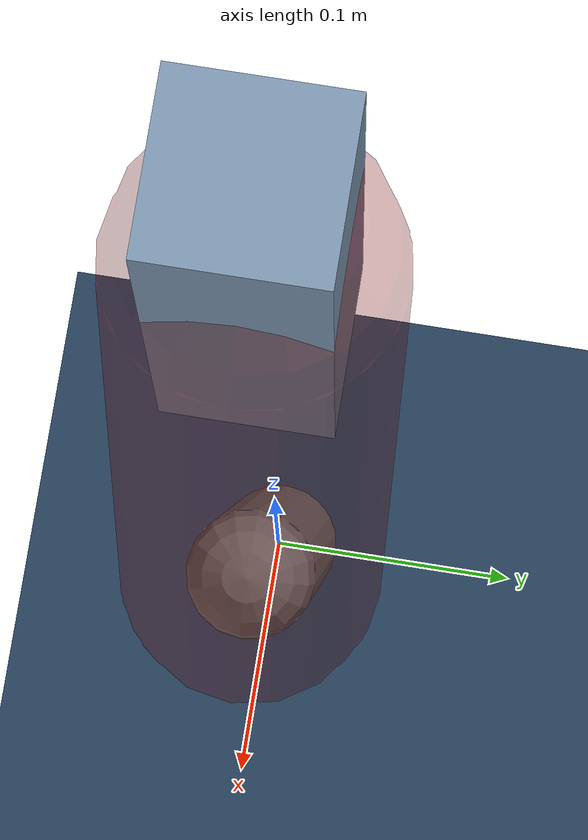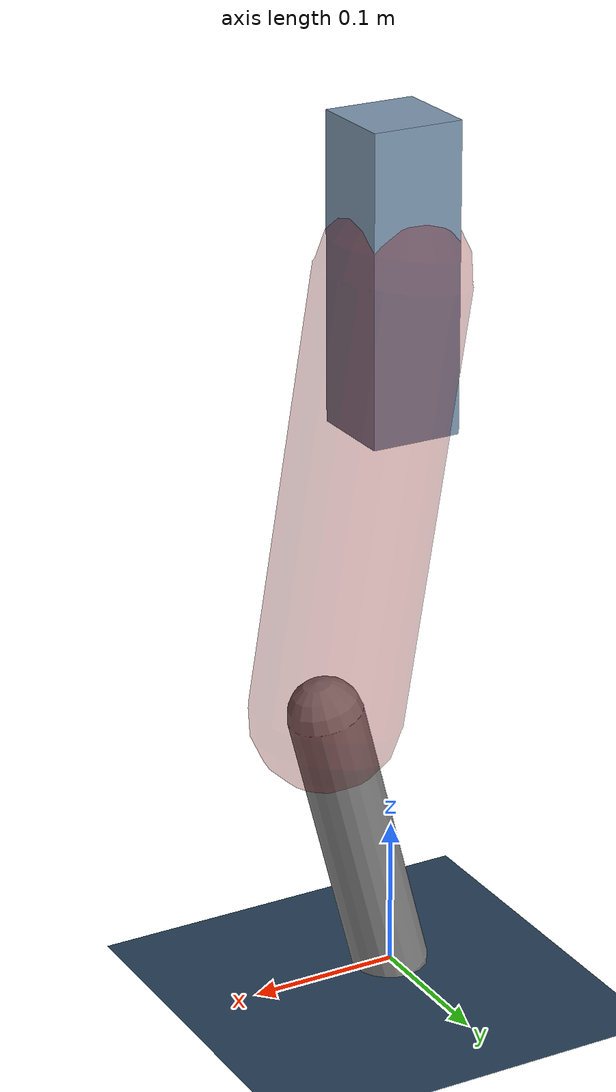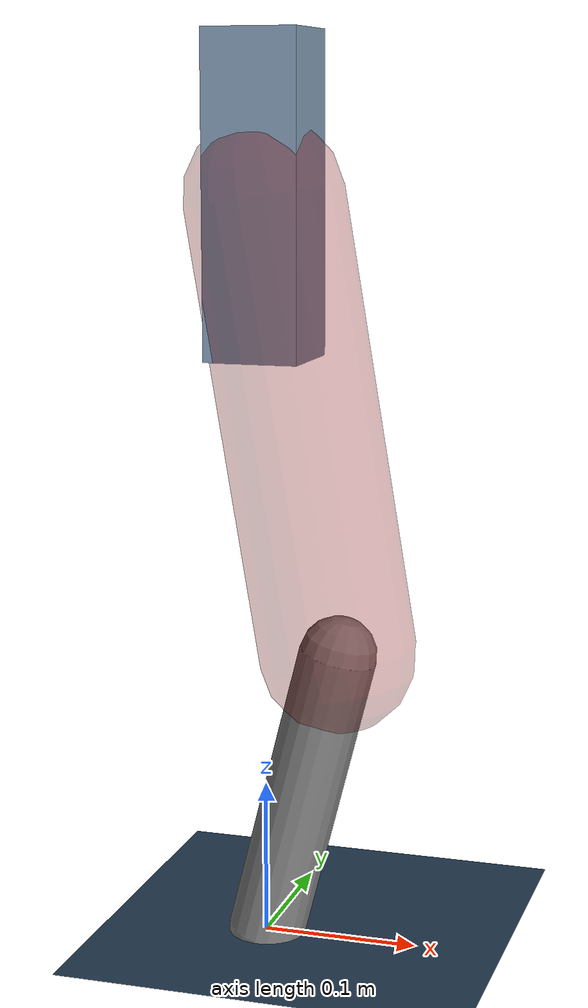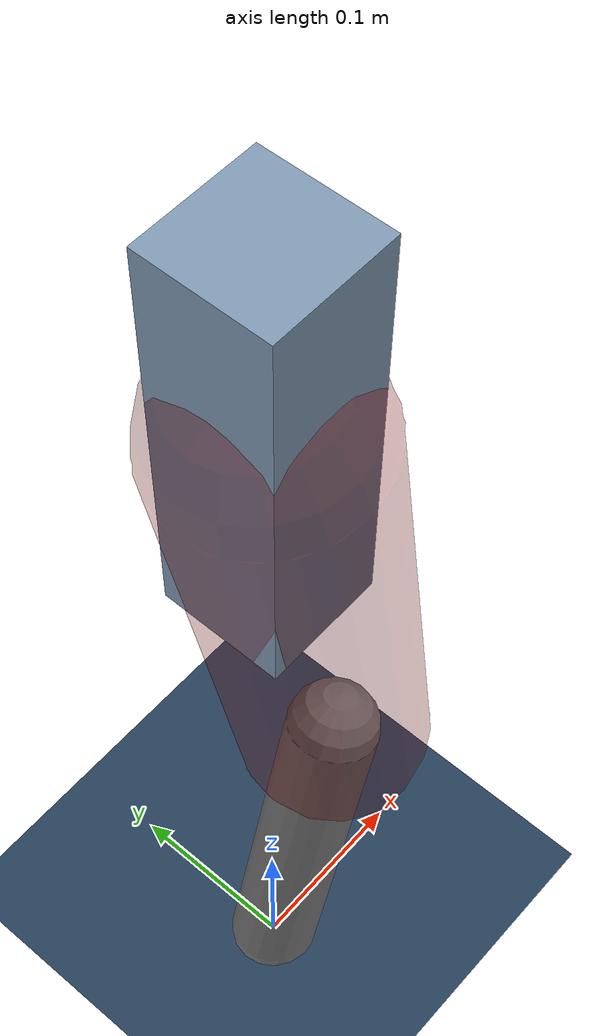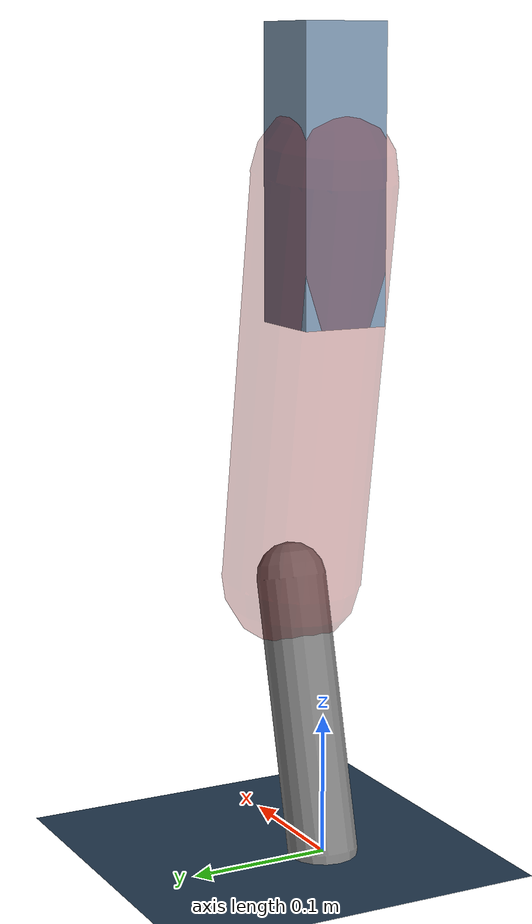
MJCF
<mujoco model="Hopper2D">
	<compiler inertiafromgeom="true" angle="radian" />
	<option timestep="0.001" integrator="implicit" cone="elliptic" solver="Newton" tolerance="1e-10" />

	<default>
		<geom contype="1" conaffinity="1" condim="3" friction="2 0.005 0.0001" solref="0.005 1" />
		<joint limited="true" damping="0.1" />
	</default>

	<asset>
		<texture name="skybox" type="skybox" builtin="gradient" rgb1=".4 .6 .8" rgb2="0 0 0" width="800" height="800" />
		<texture name="grid" type="2d" builtin="checker" rgb1=".1 .2 .3" rgb2=".2 .3 .4" width="300" height="300" mark="edge" markrgb=".2 .3 .4" />
		<material name="ground" texture="grid" texrepeat="1 1" texuniform="true" reflectance="0.1" />
		<material name="leg" rgba="0.5 0.6 0.7 1" />
	</asset>

	<worldbody>

		<geom name="floor" type="plane" size="5 5 0.25" material="ground" />

		<light directional="false" diffuse="0.8 0.8 0.8" specular="0.3 0.3 0.3" pos="0 0 2" dir="0 0 -1" />
		<light mode="targetbodycom" target="base" directional="false" diffuse="0.8 0.8 0.8" specular="0.3 0.3 0.3" pos="0 0 2" dir="0 0 -1" />

		<camera name="fixed" pos="0 -2 1" xyaxes="1 0 0 0 0 1" />
		<camera name="tracking" mode="trackcom" pos="0 -3 1" />

		<body name="root" pos="0 0 0.47688365823924184">
			<joint name="slide_x" type="slide" axis="1 0 0" range="-100 100" />
			<joint name="slide_z" type="slide" axis="0 0 1" range="0 10" />

			<body name="base" pos="0 0 0">
				<geom name="torso" type="box" size="0.03 0.03 0.1" mass="1.8650000000000002" material="leg" />

				<body name="link1" pos="0 0 0" euler="0 1.4043987228810044 0">
					<joint type="hinge" axis="0 -1 0" pos="0 0 0" name="hinge1" limited="true" range="-3.14 3.14" stiffness="0" damping="0.1" />
					<geom name="thigh" type="capsule" fromto="0 0 0 0.2905224299640785 0 0" size="0.05" rgba="0.5 0 0 0.3" mass="0.963210560903012" />

					<body name="link2" pos="0.2905224299640785 0 0" euler="0 0.4139748633645321 0">
						<joint type="hinge" axis="0 -1 0" pos="0 0 0" name="hinge2" limited="true" range="-3.14 3.14" stiffness="0" damping="0.1" />
						<geom name="shank" type="capsule" fromto="0 0 0 0.1963612282751633 0 0" size="0.025" mass="0.397825105447647" />

					</body>
				</body>
			</body>
		</body>
	</worldbody>

	<actuator>
		<motor name="torque1" joint="hinge1" ctrlrange="-39.336297019034134 39.336297019034134" ctrllimited="true" gear="1" />
		<motor name="torque2" joint="hinge2" ctrlrange="-63.80935085253144 63.80935085253144" ctrllimited="true" gear="1" />
	</actuator>
</mujoco>
